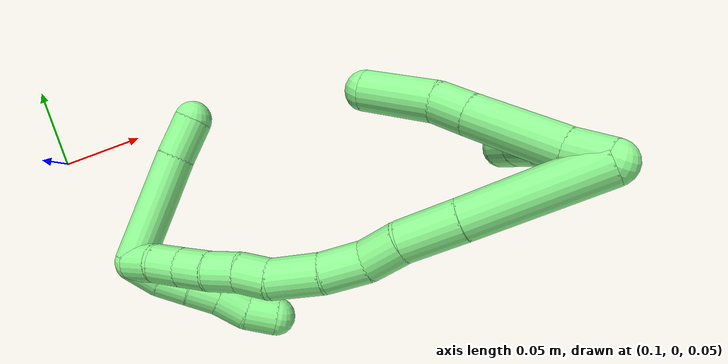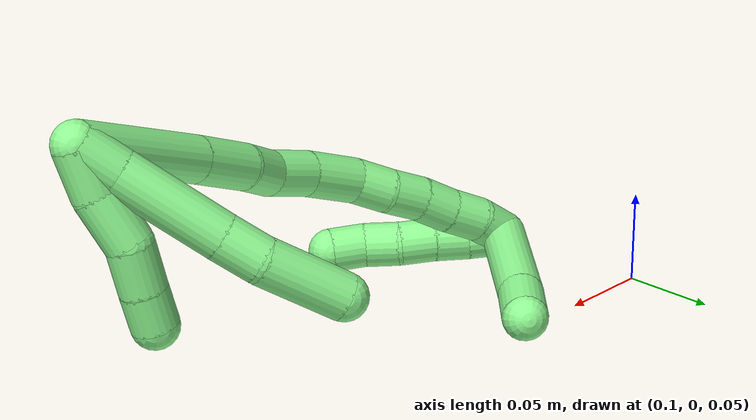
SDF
<sdf version="1.7">
 <world name="default">
  <model name="13">
   <static>0</static>
   <link name="13">
    <collision name="collision-cylinder-e_1_2_8">
     <pose>-0.003468 -0.011111 0.001676 1.42108 -0.299328 -0.25806</pose>
     <geometry><cylinder><radius>0.0125</radius><length>0.02352</length></cylinder></geometry>
     <surface>
      <friction><ode><mu>1.16</mu><mu2>1.16</mu2><slip1>0</slip1><slip2>0</slip2></ode></friction>
      <contact><ode><kp>1e+06</kp><kd>1</kd><max_vel>0</max_vel><min_depth>0.001</min_depth></ode></contact>
     </surface>
    </collision>
    <visual name="visual-cylinder-e_1_2_8">
     <pose>-0.003468 -0.011111 0.001676 1.42108 -0.299328 -0.25806</pose>
     <geometry><cylinder><radius>0.0125</radius><length>0.02352</length></cylinder></geometry>
     <material><ambient>0.564706 0.984314 0.572549 1</ambient></material>
    </visual>
    <collision name="collision-cylinder-e_2_8_9">
     <pose>-0.015941 -0.049653 0.00483 1.51697 -0.316787 -0.300435</pose>
     <geometry><cylinder><radius>0.0125</radius><length>0.057817</length></cylinder></geometry>
     <surface>
      <friction><ode><mu>1.16</mu><mu2>1.16</mu2><slip1>0</slip1><slip2>0</slip2></ode></friction>
      <contact><ode><kp>1e+06</kp><kd>1</kd><max_vel>0</max_vel><min_depth>0.001</min_depth></ode></contact>
     </surface>
    </collision>
    <visual name="visual-cylinder-e_2_8_9">
     <pose>-0.015941 -0.049653 0.00483 1.51697 -0.316787 -0.300435</pose>
     <geometry><cylinder><radius>0.0125</radius><length>0.057817</length></cylinder></geometry>
     <material><ambient>0.564706 0.984314 0.572549 1</ambient></material>
    </visual>
    <collision name="collision-cylinder-e_3_9_10">
     <pose>-0.028755 -0.087667 0.006671 1.53655 -0.345257 -0.333848</pose>
     <geometry><cylinder><radius>0.0125</radius><length>0.022508</length></cylinder></geometry>
     <surface>
      <friction><ode><mu>1.16</mu><mu2>1.16</mu2><slip1>0</slip1><slip2>0</slip2></ode></friction>
      <contact><ode><kp>1e+06</kp><kd>1</kd><max_vel>0</max_vel><min_depth>0.001</min_depth></ode></contact>
     </surface>
    </collision>
    <visual name="visual-cylinder-e_3_9_10">
     <pose>-0.028755 -0.087667 0.006671 1.53655 -0.345257 -0.333848</pose>
     <geometry><cylinder><radius>0.0125</radius><length>0.022508</length></cylinder></geometry>
     <material><ambient>0.564706 0.984314 0.572549 1</ambient></material>
    </visual>
    <collision name="collision-cylinder-e_4_10_6">
     <pose>-0.042316 -0.118591 0.011906 1.33565 -0.436301 -0.346185</pose>
     <geometry><cylinder><radius>0.0125</radius><length>0.046155</length></cylinder></geometry>
     <surface>
      <friction><ode><mu>1.16</mu><mu2>1.16</mu2><slip1>0</slip1><slip2>0</slip2></ode></friction>
      <contact><ode><kp>1e+06</kp><kd>1</kd><max_vel>0</max_vel><min_depth>0.001</min_depth></ode></contact>
     </surface>
    </collision>
    <visual name="visual-cylinder-e_4_10_6">
     <pose>-0.042316 -0.118591 0.011906 1.33565 -0.436301 -0.346185</pose>
     <geometry><cylinder><radius>0.0125</radius><length>0.046155</length></cylinder></geometry>
     <material><ambient>0.564706 0.984314 0.572549 1</ambient></material>
    </visual>
    <collision name="collision-cylinder-e_1_2_11">
     <pose>0.003973 -0.01203 0.002729 1.34771 0.311548 0.249515</pose>
     <geometry><cylinder><radius>0.0125</radius><length>0.025919</length></cylinder></geometry>
     <surface>
      <friction><ode><mu>1.16</mu><mu2>1.16</mu2><slip1>0</slip1><slip2>0</slip2></ode></friction>
      <contact><ode><kp>1e+06</kp><kd>1</kd><max_vel>0</max_vel><min_depth>0.001</min_depth></ode></contact>
     </surface>
    </collision>
    <visual name="visual-cylinder-e_1_2_11">
     <pose>0.003973 -0.01203 0.002729 1.34771 0.311548 0.249515</pose>
     <geometry><cylinder><radius>0.0125</radius><length>0.025919</length></cylinder></geometry>
     <material><ambient>0.564706 0.984314 0.572549 1</ambient></material>
    </visual>
    <collision name="collision-cylinder-e_2_11_12">
     <pose>0.009525 -0.038208 0.00743 1.43235 0.110142 0.095882</pose>
     <geometry><cylinder><radius>0.0125</radius><length>0.028744</length></cylinder></geometry>
     <surface>
      <friction><ode><mu>1.16</mu><mu2>1.16</mu2><slip1>0</slip1><slip2>0</slip2></ode></friction>
      <contact><ode><kp>1e+06</kp><kd>1</kd><max_vel>0</max_vel><min_depth>0.001</min_depth></ode></contact>
     </surface>
    </collision>
    <visual name="visual-cylinder-e_2_11_12">
     <pose>0.009525 -0.038208 0.00743 1.43235 0.110142 0.095882</pose>
     <geometry><cylinder><radius>0.0125</radius><length>0.028744</length></cylinder></geometry>
     <material><ambient>0.564706 0.984314 0.572549 1</ambient></material>
    </visual>
    <collision name="collision-cylinder-e_3_12_13">
     <pose>0.015823 -0.063163 0.013298 1.22468 0.389753 0.275529</pose>
     <geometry><cylinder><radius>0.0125</radius><length>0.024837</length></cylinder></geometry>
     <surface>
      <friction><ode><mu>1.16</mu><mu2>1.16</mu2><slip1>0</slip1><slip2>0</slip2></ode></friction>
      <contact><ode><kp>1e+06</kp><kd>1</kd><max_vel>0</max_vel><min_depth>0.001</min_depth></ode></contact>
     </surface>
    </collision>
    <visual name="visual-cylinder-e_3_12_13">
     <pose>0.015823 -0.063163 0.013298 1.22468 0.389753 0.275529</pose>
     <geometry><cylinder><radius>0.0125</radius><length>0.024837</length></cylinder></geometry>
     <material><ambient>0.564706 0.984314 0.572549 1</ambient></material>
    </visual>
    <collision name="collision-cylinder-e_4_13_5">
     <pose>0.024192 -0.082865 0.020744 1.19127 0.364074 0.248231</pose>
     <geometry><cylinder><radius>0.0125</radius><length>0.020499</length></cylinder></geometry>
     <surface>
      <friction><ode><mu>1.16</mu><mu2>1.16</mu2><slip1>0</slip1><slip2>0</slip2></ode></friction>
      <contact><ode><kp>1e+06</kp><kd>1</kd><max_vel>0</max_vel><min_depth>0.001</min_depth></ode></contact>
     </surface>
    </collision>
    <visual name="visual-cylinder-e_4_13_5">
     <pose>0.024192 -0.082865 0.020744 1.19127 0.364074 0.248231</pose>
     <geometry><cylinder><radius>0.0125</radius><length>0.020499</length></cylinder></geometry>
     <material><ambient>0.564706 0.984314 0.572549 1</ambient></material>
    </visual>
    <collision name="collision-cylinder-e_1_2_14">
     <pose>-0.018845 -0.021448 0.027803 0.657067 -0.492549 -0.170965</pose>
     <geometry><cylinder><radius>0.0125</radius><length>0.079703</length></cylinder></geometry>
     <surface>
      <friction><ode><mu>1.16</mu><mu2>1.16</mu2><slip1>0</slip1><slip2>0</slip2></ode></friction>
      <contact><ode><kp>1e+06</kp><kd>1</kd><max_vel>0</max_vel><min_depth>0.001</min_depth></ode></contact>
     </surface>
    </collision>
    <visual name="visual-cylinder-e_1_2_14">
     <pose>-0.018845 -0.021448 0.027803 0.657067 -0.492549 -0.170965</pose>
     <geometry><cylinder><radius>0.0125</radius><length>0.079703</length></cylinder></geometry>
     <material><ambient>0.564706 0.984314 0.572549 1</ambient></material>
    </visual>
    <collision name="collision-cylinder-e_2_14_15">
     <pose>-0.045867 -0.052886 0.067952 0.680363 -0.475477 -0.171116</pose>
     <geometry><cylinder><radius>0.0125</radius><length>0.035726</length></cylinder></geometry>
     <surface>
      <friction><ode><mu>1.16</mu><mu2>1.16</mu2><slip1>0</slip1><slip2>0</slip2></ode></friction>
      <contact><ode><kp>1e+06</kp><kd>1</kd><max_vel>0</max_vel><min_depth>0.001</min_depth></ode></contact>
     </surface>
    </collision>
    <visual name="visual-cylinder-e_2_14_15">
     <pose>-0.045867 -0.052886 0.067952 0.680363 -0.475477 -0.171116</pose>
     <geometry><cylinder><radius>0.0125</radius><length>0.035726</length></cylinder></geometry>
     <material><ambient>0.564706 0.984314 0.572549 1</ambient></material>
    </visual>
    <collision name="collision-cylinder-e_3_15_16">
     <pose>-0.057951 -0.068855 0.089663 0.568116 -0.338168 -0.099598</pose>
     <geometry><cylinder><radius>0.0125</radius><length>0.023556</length></cylinder></geometry>
     <surface>
      <friction><ode><mu>1.16</mu><mu2>1.16</mu2><slip1>0</slip1><slip2>0</slip2></ode></friction>
      <contact><ode><kp>1e+06</kp><kd>1</kd><max_vel>0</max_vel><min_depth>0.001</min_depth></ode></contact>
     </surface>
    </collision>
    <visual name="visual-cylinder-e_3_15_16">
     <pose>-0.057951 -0.068855 0.089663 0.568116 -0.338168 -0.099598</pose>
     <geometry><cylinder><radius>0.0125</radius><length>0.023556</length></cylinder></geometry>
     <material><ambient>0.564706 0.984314 0.572549 1</ambient></material>
    </visual>
    <collision name="collision-cylinder-e_4_16_17">
     <pose>-0.069667 -0.081949 0.107282 0.711486 -0.621741 -0.237625</pose>
     <geometry><cylinder><radius>0.0125</radius><length>0.026812</length></cylinder></geometry>
     <surface>
      <friction><ode><mu>1.16</mu><mu2>1.16</mu2><slip1>0</slip1><slip2>0</slip2></ode></friction>
      <contact><ode><kp>1e+06</kp><kd>1</kd><max_vel>0</max_vel><min_depth>0.001</min_depth></ode></contact>
     </surface>
    </collision>
    <visual name="visual-cylinder-e_4_16_17">
     <pose>-0.069667 -0.081949 0.107282 0.711486 -0.621741 -0.237625</pose>
     <geometry><cylinder><radius>0.0125</radius><length>0.026812</length></cylinder></geometry>
     <material><ambient>0.564706 0.984314 0.572549 1</ambient></material>
    </visual>
    <collision name="collision-cylinder-e_5_17_18">
     <pose>-0.086549 -0.099553 0.123763 0.905613 -0.597642 -0.297526</pose>
     <geometry><cylinder><radius>0.0125</radius><length>0.03225</length></cylinder></geometry>
     <surface>
      <friction><ode><mu>1.16</mu><mu2>1.16</mu2><slip1>0</slip1><slip2>0</slip2></ode></friction>
      <contact><ode><kp>1e+06</kp><kd>1</kd><max_vel>0</max_vel><min_depth>0.001</min_depth></ode></contact>
     </surface>
    </collision>
    <visual name="visual-cylinder-e_5_17_18">
     <pose>-0.086549 -0.099553 0.123763 0.905613 -0.597642 -0.297526</pose>
     <geometry><cylinder><radius>0.0125</radius><length>0.03225</length></cylinder></geometry>
     <material><ambient>0.564706 0.984314 0.572549 1</ambient></material>
    </visual>
    <collision name="collision-cylinder-e_6_18_19">
     <pose>-0.101158 -0.118494 0.134577 1.27382 -0.559485 -0.418794</pose>
     <geometry><cylinder><radius>0.0125</radius><length>0.020861</length></cylinder></geometry>
     <surface>
      <friction><ode><mu>1.16</mu><mu2>1.16</mu2><slip1>0</slip1><slip2>0</slip2></ode></friction>
      <contact><ode><kp>1e+06</kp><kd>1</kd><max_vel>0</max_vel><min_depth>0.001</min_depth></ode></contact>
     </surface>
    </collision>
    <visual name="visual-cylinder-e_6_18_19">
     <pose>-0.101158 -0.118494 0.134577 1.27382 -0.559485 -0.418794</pose>
     <geometry><cylinder><radius>0.0125</radius><length>0.020861</length></cylinder></geometry>
     <material><ambient>0.564706 0.984314 0.572549 1</ambient></material>
    </visual>
    <collision name="collision-cylinder-e_7_19_20">
     <pose>-0.112349 -0.134662 0.141264 1.08238 -0.574427 -0.351416</pose>
     <geometry><cylinder><radius>0.0125</radius><length>0.020814</length></cylinder></geometry>
     <surface>
      <friction><ode><mu>1.16</mu><mu2>1.16</mu2><slip1>0</slip1><slip2>0</slip2></ode></friction>
      <contact><ode><kp>1e+06</kp><kd>1</kd><max_vel>0</max_vel><min_depth>0.001</min_depth></ode></contact>
     </surface>
    </collision>
    <visual name="visual-cylinder-e_7_19_20">
     <pose>-0.112349 -0.134662 0.141264 1.08238 -0.574427 -0.351416</pose>
     <geometry><cylinder><radius>0.0125</radius><length>0.020814</length></cylinder></geometry>
     <material><ambient>0.564706 0.984314 0.572549 1</ambient></material>
    </visual>
    <collision name="collision-cylinder-e_8_20_21">
     <pose>-0.122528 -0.150675 0.148821 1.17596 -0.466273 -0.313983</pose>
     <geometry><cylinder><radius>0.0125</radius><length>0.020127</length></cylinder></geometry>
     <surface>
      <friction><ode><mu>1.16</mu><mu2>1.16</mu2><slip1>0</slip1><slip2>0</slip2></ode></friction>
      <contact><ode><kp>1e+06</kp><kd>1</kd><max_vel>0</max_vel><min_depth>0.001</min_depth></ode></contact>
     </surface>
    </collision>
    <visual name="visual-cylinder-e_8_20_21">
     <pose>-0.122528 -0.150675 0.148821 1.17596 -0.466273 -0.313983</pose>
     <geometry><cylinder><radius>0.0125</radius><length>0.020127</length></cylinder></geometry>
     <material><ambient>0.564706 0.984314 0.572549 1</ambient></material>
    </visual>
    <collision name="collision-cylinder-e_9_21_22">
     <pose>-0.132318 -0.166935 0.155405 1.19672 -0.551809 -0.381343</pose>
     <geometry><cylinder><radius>0.0125</radius><length>0.02009</length></cylinder></geometry>
     <surface>
      <friction><ode><mu>1.16</mu><mu2>1.16</mu2><slip1>0</slip1><slip2>0</slip2></ode></friction>
      <contact><ode><kp>1e+06</kp><kd>1</kd><max_vel>0</max_vel><min_depth>0.001</min_depth></ode></contact>
     </surface>
    </collision>
    <visual name="visual-cylinder-e_9_21_22">
     <pose>-0.132318 -0.166935 0.155405 1.19672 -0.551809 -0.381343</pose>
     <geometry><cylinder><radius>0.0125</radius><length>0.02009</length></cylinder></geometry>
     <material><ambient>0.564706 0.984314 0.572549 1</ambient></material>
    </visual>
    <collision name="collision-cylinder-e_10_22_1">
     <pose>-0.140935 -0.183309 0.162846 1.09677 -0.340638 -0.209358</pose>
     <geometry><cylinder><radius>0.0125</radius><length>0.02006</length></cylinder></geometry>
     <surface>
      <friction><ode><mu>1.16</mu><mu2>1.16</mu2><slip1>0</slip1><slip2>0</slip2></ode></friction>
      <contact><ode><kp>1e+06</kp><kd>1</kd><max_vel>0</max_vel><min_depth>0.001</min_depth></ode></contact>
     </surface>
    </collision>
    <visual name="visual-cylinder-e_10_22_1">
     <pose>-0.140935 -0.183309 0.162846 1.09677 -0.340638 -0.209358</pose>
     <geometry><cylinder><radius>0.0125</radius><length>0.02006</length></cylinder></geometry>
     <material><ambient>0.564706 0.984314 0.572549 1</ambient></material>
    </visual>
    <collision name="collision-cylinder-e_1_1_23">
     <pose>-0.135054 -0.201569 0.133359 2.85808 0.256425 1.46932</pose>
     <geometry><cylinder><radius>0.0125</radius><length>0.072796</length></cylinder></geometry>
     <surface>
      <friction><ode><mu>1.16</mu><mu2>1.16</mu2><slip1>0</slip1><slip2>0</slip2></ode></friction>
      <contact><ode><kp>1e+06</kp><kd>1</kd><max_vel>0</max_vel><min_depth>0.001</min_depth></ode></contact>
     </surface>
    </collision>
    <visual name="visual-cylinder-e_1_1_23">
     <pose>-0.135054 -0.201569 0.133359 2.85808 0.256425 1.46932</pose>
     <geometry><cylinder><radius>0.0125</radius><length>0.072796</length></cylinder></geometry>
     <material><ambient>0.564706 0.984314 0.572549 1</ambient></material>
    </visual>
    <collision name="collision-cylinder-e_2_23_4">
     <pose>-0.122004 -0.214177 0.086796 2.92863 0.284585 1.85961</pose>
     <geometry><cylinder><radius>0.0125</radius><length>0.027204</length></cylinder></geometry>
     <surface>
      <friction><ode><mu>1.16</mu><mu2>1.16</mu2><slip1>0</slip1><slip2>0</slip2></ode></friction>
      <contact><ode><kp>1e+06</kp><kd>1</kd><max_vel>0</max_vel><min_depth>0.001</min_depth></ode></contact>
     </surface>
    </collision>
    <visual name="visual-cylinder-e_2_23_4">
     <pose>-0.122004 -0.214177 0.086796 2.92863 0.284585 1.85961</pose>
     <geometry><cylinder><radius>0.0125</radius><length>0.027204</length></cylinder></geometry>
     <material><ambient>0.564706 0.984314 0.572549 1</ambient></material>
    </visual>
    <collision name="collision-cylinder-e_1_1_24">
     <pose>-0.136076 -0.186713 0.169904 -1.06971 0.9631 -0.600496</pose>
     <geometry><cylinder><radius>0.0125</radius><length>0.02</length></cylinder></geometry>
     <surface>
      <friction><ode><mu>1.16</mu><mu2>1.16</mu2><slip1>0</slip1><slip2>0</slip2></ode></friction>
      <contact><ode><kp>1e+06</kp><kd>1</kd><max_vel>0</max_vel><min_depth>0.001</min_depth></ode></contact>
     </surface>
    </collision>
    <visual name="visual-cylinder-e_1_1_24">
     <pose>-0.136076 -0.186713 0.169904 -1.06971 0.9631 -0.600496</pose>
     <geometry><cylinder><radius>0.0125</radius><length>0.02</length></cylinder></geometry>
     <material><ambient>0.564706 0.984314 0.572549 1</ambient></material>
    </visual>
    <collision name="collision-cylinder-e_2_24_25">
     <pose>-0.119786 -0.175815 0.172507 -1.59452 0.940745 -0.960046</pose>
     <geometry><cylinder><radius>0.0125</radius><length>0.02</length></cylinder></geometry>
     <surface>
      <friction><ode><mu>1.16</mu><mu2>1.16</mu2><slip1>0</slip1><slip2>0</slip2></ode></friction>
      <contact><ode><kp>1e+06</kp><kd>1</kd><max_vel>0</max_vel><min_depth>0.001</min_depth></ode></contact>
     </surface>
    </collision>
    <visual name="visual-cylinder-e_2_24_25">
     <pose>-0.119786 -0.175815 0.172507 -1.59452 0.940745 -0.960046</pose>
     <geometry><cylinder><radius>0.0125</radius><length>0.02</length></cylinder></geometry>
     <material><ambient>0.564706 0.984314 0.572549 1</ambient></material>
    </visual>
    <collision name="collision-cylinder-e_3_25_26">
     <pose>-0.103251 -0.164587 0.172482 -1.54935 1.00763 -0.989599</pose>
     <geometry><cylinder><radius>0.0125</radius><length>0.02</length></cylinder></geometry>
     <surface>
      <friction><ode><mu>1.16</mu><mu2>1.16</mu2><slip1>0</slip1><slip2>0</slip2></ode></friction>
      <contact><ode><kp>1e+06</kp><kd>1</kd><max_vel>0</max_vel><min_depth>0.001</min_depth></ode></contact>
     </surface>
    </collision>
    <visual name="visual-cylinder-e_3_25_26">
     <pose>-0.103251 -0.164587 0.172482 -1.54935 1.00763 -0.989599</pose>
     <geometry><cylinder><radius>0.0125</radius><length>0.02</length></cylinder></geometry>
     <material><ambient>0.564706 0.984314 0.572549 1</ambient></material>
    </visual>
    <collision name="collision-cylinder-e_4_26_27">
     <pose>-0.086877 -0.153427 0.174442 -1.26383 0.913663 -0.690777</pose>
     <geometry><cylinder><radius>0.0125</radius><length>0.02</length></cylinder></geometry>
     <surface>
      <friction><ode><mu>1.16</mu><mu2>1.16</mu2><slip1>0</slip1><slip2>0</slip2></ode></friction>
      <contact><ode><kp>1e+06</kp><kd>1</kd><max_vel>0</max_vel><min_depth>0.001</min_depth></ode></contact>
     </surface>
    </collision>
    <visual name="visual-cylinder-e_4_26_27">
     <pose>-0.086877 -0.153427 0.174442 -1.26383 0.913663 -0.690777</pose>
     <geometry><cylinder><radius>0.0125</radius><length>0.02</length></cylinder></geometry>
     <material><ambient>0.564706 0.984314 0.572549 1</ambient></material>
    </visual>
    <collision name="collision-cylinder-e_5_27_3">
     <pose>-0.070441 -0.14246 0.175301 -1.76037 1.01953 -1.18958</pose>
     <geometry><cylinder><radius>0.0125</radius><length>0.02</length></cylinder></geometry>
     <surface>
      <friction><ode><mu>1.16</mu><mu2>1.16</mu2><slip1>0</slip1><slip2>0</slip2></ode></friction>
      <contact><ode><kp>1e+06</kp><kd>1</kd><max_vel>0</max_vel><min_depth>0.001</min_depth></ode></contact>
     </surface>
    </collision>
    <visual name="visual-cylinder-e_5_27_3">
     <pose>-0.070441 -0.14246 0.175301 -1.76037 1.01953 -1.18958</pose>
     <geometry><cylinder><radius>0.0125</radius><length>0.02</length></cylinder></geometry>
     <material><ambient>0.564706 0.984314 0.572549 1</ambient></material>
    </visual>
    <collision name="collision-sphere-3">
     <pose>-0.061923 -0.137316 0.174314 0 -0 0</pose>
     <geometry><sphere><radius>0.0125</radius></sphere></geometry>
     <surface>
      <friction><ode><mu>1.16</mu><mu2>1.16</mu2><slip1>0</slip1><slip2>0</slip2></ode></friction>
      <contact><ode><kp>1e+06</kp><kd>1</kd><max_vel>0</max_vel><min_depth>0.001</min_depth></ode></contact>
     </surface>
    </collision>
    <visual name="visual-sphere-3">
     <pose>-0.061923 -0.137316 0.174314 0 -0 0</pose>
     <geometry><sphere><radius>0.0125</radius></sphere></geometry>
     <material><ambient>0.564706 0.984314 0.572549 1</ambient></material>
    </visual>
    <collision name="collision-sphere-27">
     <pose>-0.07896 -0.147604 0.176288 0 -0 0</pose>
     <geometry><sphere><radius>0.0125</radius></sphere></geometry>
     <surface>
      <friction><ode><mu>1.16</mu><mu2>1.16</mu2><slip1>0</slip1><slip2>0</slip2></ode></friction>
      <contact><ode><kp>1e+06</kp><kd>1</kd><max_vel>0</max_vel><min_depth>0.001</min_depth></ode></contact>
     </surface>
    </collision>
    <visual name="visual-sphere-27">
     <pose>-0.07896 -0.147604 0.176288 0 -0 0</pose>
     <geometry><sphere><radius>0.0125</radius></sphere></geometry>
     <material><ambient>0.564706 0.984314 0.572549 1</ambient></material>
    </visual>
    <collision name="collision-sphere-26">
     <pose>-0.094795 -0.15925 0.172596 0 -0 0</pose>
     <geometry><sphere><radius>0.0125</radius></sphere></geometry>
     <surface>
      <friction><ode><mu>1.16</mu><mu2>1.16</mu2><slip1>0</slip1><slip2>0</slip2></ode></friction>
      <contact><ode><kp>1e+06</kp><kd>1</kd><max_vel>0</max_vel><min_depth>0.001</min_depth></ode></contact>
     </surface>
    </collision>
    <visual name="visual-sphere-26">
     <pose>-0.094795 -0.15925 0.172596 0 -0 0</pose>
     <geometry><sphere><radius>0.0125</radius></sphere></geometry>
     <material><ambient>0.564706 0.984314 0.572549 1</ambient></material>
    </visual>
    <collision name="collision-sphere-25">
     <pose>-0.111706 -0.169925 0.172367 0 -0 0</pose>
     <geometry><sphere><radius>0.0125</radius></sphere></geometry>
     <surface>
      <friction><ode><mu>1.16</mu><mu2>1.16</mu2><slip1>0</slip1><slip2>0</slip2></ode></friction>
      <contact><ode><kp>1e+06</kp><kd>1</kd><max_vel>0</max_vel><min_depth>0.001</min_depth></ode></contact>
     </surface>
    </collision>
    <visual name="visual-sphere-25">
     <pose>-0.111706 -0.169925 0.172367 0 -0 0</pose>
     <geometry><sphere><radius>0.0125</radius></sphere></geometry>
     <material><ambient>0.564706 0.984314 0.572549 1</ambient></material>
    </visual>
    <collision name="collision-sphere-24">
     <pose>-0.127866 -0.181705 0.172647 0 -0 0</pose>
     <geometry><sphere><radius>0.0125</radius></sphere></geometry>
     <surface>
      <friction><ode><mu>1.16</mu><mu2>1.16</mu2><slip1>0</slip1><slip2>0</slip2></ode></friction>
      <contact><ode><kp>1e+06</kp><kd>1</kd><max_vel>0</max_vel><min_depth>0.001</min_depth></ode></contact>
     </surface>
    </collision>
    <visual name="visual-sphere-24">
     <pose>-0.127866 -0.181705 0.172647 0 -0 0</pose>
     <geometry><sphere><radius>0.0125</radius></sphere></geometry>
     <material><ambient>0.564706 0.984314 0.572549 1</ambient></material>
    </visual>
    <collision name="collision-sphere-4">
     <pose>-0.118185 -0.216936 0.074036 0 -0 0</pose>
     <geometry><sphere><radius>0.0125</radius></sphere></geometry>
     <surface>
      <friction><ode><mu>1.16</mu><mu2>1.16</mu2><slip1>0</slip1><slip2>0</slip2></ode></friction>
      <contact><ode><kp>1e+06</kp><kd>1</kd><max_vel>0</max_vel><min_depth>0.001</min_depth></ode></contact>
     </surface>
    </collision>
    <visual name="visual-sphere-4">
     <pose>-0.118185 -0.216936 0.074036 0 -0 0</pose>
     <geometry><sphere><radius>0.0125</radius></sphere></geometry>
     <material><ambient>0.564706 0.984314 0.572549 1</ambient></material>
    </visual>
    <collision name="collision-sphere-23">
     <pose>-0.125823 -0.211418 0.099556 0 -0 0</pose>
     <geometry><sphere><radius>0.0125</radius></sphere></geometry>
     <surface>
      <friction><ode><mu>1.16</mu><mu2>1.16</mu2><slip1>0</slip1><slip2>0</slip2></ode></friction>
      <contact><ode><kp>1e+06</kp><kd>1</kd><max_vel>0</max_vel><min_depth>0.001</min_depth></ode></contact>
     </surface>
    </collision>
    <visual name="visual-sphere-23">
     <pose>-0.125823 -0.211418 0.099556 0 -0 0</pose>
     <geometry><sphere><radius>0.0125</radius></sphere></geometry>
     <material><ambient>0.564706 0.984314 0.572549 1</ambient></material>
    </visual>
    <collision name="collision-sphere-1">
     <pose>-0.144286 -0.191721 0.167161 0 -0 0</pose>
     <geometry><sphere><radius>0.0125</radius></sphere></geometry>
     <surface>
      <friction><ode><mu>1.16</mu><mu2>1.16</mu2><slip1>0</slip1><slip2>0</slip2></ode></friction>
      <contact><ode><kp>1e+06</kp><kd>1</kd><max_vel>0</max_vel><min_depth>0.001</min_depth></ode></contact>
     </surface>
    </collision>
    <visual name="visual-sphere-1">
     <pose>-0.144286 -0.191721 0.167161 0 -0 0</pose>
     <geometry><sphere><radius>0.0125</radius></sphere></geometry>
     <material><ambient>0.564706 0.984314 0.572549 1</ambient></material>
    </visual>
    <collision name="collision-sphere-22">
     <pose>-0.137584 -0.174898 0.15853 0 -0 0</pose>
     <geometry><sphere><radius>0.0125</radius></sphere></geometry>
     <surface>
      <friction><ode><mu>1.16</mu><mu2>1.16</mu2><slip1>0</slip1><slip2>0</slip2></ode></friction>
      <contact><ode><kp>1e+06</kp><kd>1</kd><max_vel>0</max_vel><min_depth>0.001</min_depth></ode></contact>
     </surface>
    </collision>
    <visual name="visual-sphere-22">
     <pose>-0.137584 -0.174898 0.15853 0 -0 0</pose>
     <geometry><sphere><radius>0.0125</radius></sphere></geometry>
     <material><ambient>0.564706 0.984314 0.572549 1</ambient></material>
    </visual>
    <collision name="collision-sphere-21">
     <pose>-0.127052 -0.158973 0.152279 0 -0 0</pose>
     <geometry><sphere><radius>0.0125</radius></sphere></geometry>
     <surface>
      <friction><ode><mu>1.16</mu><mu2>1.16</mu2><slip1>0</slip1><slip2>0</slip2></ode></friction>
      <contact><ode><kp>1e+06</kp><kd>1</kd><max_vel>0</max_vel><min_depth>0.001</min_depth></ode></contact>
     </surface>
    </collision>
    <visual name="visual-sphere-21">
     <pose>-0.127052 -0.158973 0.152279 0 -0 0</pose>
     <geometry><sphere><radius>0.0125</radius></sphere></geometry>
     <material><ambient>0.564706 0.984314 0.572549 1</ambient></material>
    </visual>
    <collision name="collision-sphere-11">
     <pose>0.007945 -0.02406 0.005458 0 -0 0</pose>
     <geometry><sphere><radius>0.0125</radius></sphere></geometry>
     <surface>
      <friction><ode><mu>1.16</mu><mu2>1.16</mu2><slip1>0</slip1><slip2>0</slip2></ode></friction>
      <contact><ode><kp>1e+06</kp><kd>1</kd><max_vel>0</max_vel><min_depth>0.001</min_depth></ode></contact>
     </surface>
    </collision>
    <visual name="visual-sphere-11">
     <pose>0.007945 -0.02406 0.005458 0 -0 0</pose>
     <geometry><sphere><radius>0.0125</radius></sphere></geometry>
     <material><ambient>0.564706 0.984314 0.572549 1</ambient></material>
    </visual>
    <collision name="collision-sphere-6">
     <pose>-0.052069 -0.138931 0.016779 0 -0 0</pose>
     <geometry><sphere><radius>0.0125</radius></sphere></geometry>
     <surface>
      <friction><ode><mu>1.16</mu><mu2>1.16</mu2><slip1>0</slip1><slip2>0</slip2></ode></friction>
      <contact><ode><kp>1e+06</kp><kd>1</kd><max_vel>0</max_vel><min_depth>0.001</min_depth></ode></contact>
     </surface>
    </collision>
    <visual name="visual-sphere-6">
     <pose>-0.052069 -0.138931 0.016779 0 -0 0</pose>
     <geometry><sphere><radius>0.0125</radius></sphere></geometry>
     <material><ambient>0.564706 0.984314 0.572549 1</ambient></material>
    </visual>
    <collision name="collision-sphere-10">
     <pose>-0.032564 -0.098251 0.007033 0 -0 0</pose>
     <geometry><sphere><radius>0.0125</radius></sphere></geometry>
     <surface>
      <friction><ode><mu>1.16</mu><mu2>1.16</mu2><slip1>0</slip1><slip2>0</slip2></ode></friction>
      <contact><ode><kp>1e+06</kp><kd>1</kd><max_vel>0</max_vel><min_depth>0.001</min_depth></ode></contact>
     </surface>
    </collision>
    <visual name="visual-sphere-10">
     <pose>-0.032564 -0.098251 0.007033 0 -0 0</pose>
     <geometry><sphere><radius>0.0125</radius></sphere></geometry>
     <material><ambient>0.564706 0.984314 0.572549 1</ambient></material>
    </visual>
    <collision name="collision-sphere-9">
     <pose>-0.024946 -0.077083 0.006308 0 -0 0</pose>
     <geometry><sphere><radius>0.0125</radius></sphere></geometry>
     <surface>
      <friction><ode><mu>1.16</mu><mu2>1.16</mu2><slip1>0</slip1><slip2>0</slip2></ode></friction>
      <contact><ode><kp>1e+06</kp><kd>1</kd><max_vel>0</max_vel><min_depth>0.001</min_depth></ode></contact>
     </surface>
    </collision>
    <visual name="visual-sphere-9">
     <pose>-0.024946 -0.077083 0.006308 0 -0 0</pose>
     <geometry><sphere><radius>0.0125</radius></sphere></geometry>
     <material><ambient>0.564706 0.984314 0.572549 1</ambient></material>
    </visual>
    <collision name="collision-sphere-2">
     <geometry><sphere><radius>0.0125</radius></sphere></geometry>
     <surface>
      <friction><ode><mu>1.16</mu><mu2>1.16</mu2><slip1>0</slip1><slip2>0</slip2></ode></friction>
      <contact><ode><kp>1e+06</kp><kd>1</kd><max_vel>0</max_vel><min_depth>0.001</min_depth></ode></contact>
     </surface>
    </collision>
    <visual name="visual-sphere-2">
     <geometry><sphere><radius>0.0125</radius></sphere></geometry>
     <material><ambient>0.564706 0.984314 0.572549 1</ambient></material>
    </visual>
    <collision name="collision-sphere-19">
     <pose>-0.106694 -0.126947 0.137164 0 -0 0</pose>
     <geometry><sphere><radius>0.0125</radius></sphere></geometry>
     <surface>
      <friction><ode><mu>1.16</mu><mu2>1.16</mu2><slip1>0</slip1><slip2>0</slip2></ode></friction>
      <contact><ode><kp>1e+06</kp><kd>1</kd><max_vel>0</max_vel><min_depth>0.001</min_depth></ode></contact>
     </surface>
    </collision>
    <visual name="visual-sphere-19">
     <pose>-0.106694 -0.126947 0.137164 0 -0 0</pose>
     <geometry><sphere><radius>0.0125</radius></sphere></geometry>
     <material><ambient>0.564706 0.984314 0.572549 1</ambient></material>
    </visual>
    <collision name="collision-sphere-8">
     <pose>-0.006936 -0.022223 0.003352 0 -0 0</pose>
     <geometry><sphere><radius>0.0125</radius></sphere></geometry>
     <surface>
      <friction><ode><mu>1.16</mu><mu2>1.16</mu2><slip1>0</slip1><slip2>0</slip2></ode></friction>
      <contact><ode><kp>1e+06</kp><kd>1</kd><max_vel>0</max_vel><min_depth>0.001</min_depth></ode></contact>
     </surface>
    </collision>
    <visual name="visual-sphere-8">
     <pose>-0.006936 -0.022223 0.003352 0 -0 0</pose>
     <geometry><sphere><radius>0.0125</radius></sphere></geometry>
     <material><ambient>0.564706 0.984314 0.572549 1</ambient></material>
    </visual>
    <collision name="collision-sphere-12">
     <pose>0.011105 -0.052357 0.009401 0 -0 0</pose>
     <geometry><sphere><radius>0.0125</radius></sphere></geometry>
     <surface>
      <friction><ode><mu>1.16</mu><mu2>1.16</mu2><slip1>0</slip1><slip2>0</slip2></ode></friction>
      <contact><ode><kp>1e+06</kp><kd>1</kd><max_vel>0</max_vel><min_depth>0.001</min_depth></ode></contact>
     </surface>
    </collision>
    <visual name="visual-sphere-12">
     <pose>0.011105 -0.052357 0.009401 0 -0 0</pose>
     <geometry><sphere><radius>0.0125</radius></sphere></geometry>
     <material><ambient>0.564706 0.984314 0.572549 1</ambient></material>
    </visual>
    <collision name="collision-sphere-13">
     <pose>0.020542 -0.073969 0.017195 0 -0 0</pose>
     <geometry><sphere><radius>0.0125</radius></sphere></geometry>
     <surface>
      <friction><ode><mu>1.16</mu><mu2>1.16</mu2><slip1>0</slip1><slip2>0</slip2></ode></friction>
      <contact><ode><kp>1e+06</kp><kd>1</kd><max_vel>0</max_vel><min_depth>0.001</min_depth></ode></contact>
     </surface>
    </collision>
    <visual name="visual-sphere-13">
     <pose>0.020542 -0.073969 0.017195 0 -0 0</pose>
     <geometry><sphere><radius>0.0125</radius></sphere></geometry>
     <material><ambient>0.564706 0.984314 0.572549 1</ambient></material>
    </visual>
    <collision name="collision-sphere-5">
     <pose>0.027841 -0.091761 0.024292 0 -0 0</pose>
     <geometry><sphere><radius>0.0125</radius></sphere></geometry>
     <surface>
      <friction><ode><mu>1.16</mu><mu2>1.16</mu2><slip1>0</slip1><slip2>0</slip2></ode></friction>
      <contact><ode><kp>1e+06</kp><kd>1</kd><max_vel>0</max_vel><min_depth>0.001</min_depth></ode></contact>
     </surface>
    </collision>
    <visual name="visual-sphere-5">
     <pose>0.027841 -0.091761 0.024292 0 -0 0</pose>
     <geometry><sphere><radius>0.0125</radius></sphere></geometry>
     <material><ambient>0.564706 0.984314 0.572549 1</ambient></material>
    </visual>
    <collision name="collision-sphere-14">
     <pose>-0.03769 -0.042896 0.055606 0 -0 0</pose>
     <geometry><sphere><radius>0.0125</radius></sphere></geometry>
     <surface>
      <friction><ode><mu>1.16</mu><mu2>1.16</mu2><slip1>0</slip1><slip2>0</slip2></ode></friction>
      <contact><ode><kp>1e+06</kp><kd>1</kd><max_vel>0</max_vel><min_depth>0.001</min_depth></ode></contact>
     </surface>
    </collision>
    <visual name="visual-sphere-14">
     <pose>-0.03769 -0.042896 0.055606 0 -0 0</pose>
     <geometry><sphere><radius>0.0125</radius></sphere></geometry>
     <material><ambient>0.564706 0.984314 0.572549 1</ambient></material>
    </visual>
    <collision name="collision-sphere-15">
     <pose>-0.054044 -0.062877 0.080297 0 -0 0</pose>
     <geometry><sphere><radius>0.0125</radius></sphere></geometry>
     <surface>
      <friction><ode><mu>1.16</mu><mu2>1.16</mu2><slip1>0</slip1><slip2>0</slip2></ode></friction>
      <contact><ode><kp>1e+06</kp><kd>1</kd><max_vel>0</max_vel><min_depth>0.001</min_depth></ode></contact>
     </surface>
    </collision>
    <visual name="visual-sphere-15">
     <pose>-0.054044 -0.062877 0.080297 0 -0 0</pose>
     <geometry><sphere><radius>0.0125</radius></sphere></geometry>
     <material><ambient>0.564706 0.984314 0.572549 1</ambient></material>
    </visual>
    <collision name="collision-sphere-16">
     <pose>-0.061859 -0.074834 0.099029 0 -0 0</pose>
     <geometry><sphere><radius>0.0125</radius></sphere></geometry>
     <surface>
      <friction><ode><mu>1.16</mu><mu2>1.16</mu2><slip1>0</slip1><slip2>0</slip2></ode></friction>
      <contact><ode><kp>1e+06</kp><kd>1</kd><max_vel>0</max_vel><min_depth>0.001</min_depth></ode></contact>
     </surface>
    </collision>
    <visual name="visual-sphere-16">
     <pose>-0.061859 -0.074834 0.099029 0 -0 0</pose>
     <geometry><sphere><radius>0.0125</radius></sphere></geometry>
     <material><ambient>0.564706 0.984314 0.572549 1</ambient></material>
    </visual>
    <collision name="collision-sphere-17">
     <pose>-0.077475 -0.089064 0.115536 0 -0 0</pose>
     <geometry><sphere><radius>0.0125</radius></sphere></geometry>
     <surface>
      <friction><ode><mu>1.16</mu><mu2>1.16</mu2><slip1>0</slip1><slip2>0</slip2></ode></friction>
      <contact><ode><kp>1e+06</kp><kd>1</kd><max_vel>0</max_vel><min_depth>0.001</min_depth></ode></contact>
     </surface>
    </collision>
    <visual name="visual-sphere-17">
     <pose>-0.077475 -0.089064 0.115536 0 -0 0</pose>
     <geometry><sphere><radius>0.0125</radius></sphere></geometry>
     <material><ambient>0.564706 0.984314 0.572549 1</ambient></material>
    </visual>
    <collision name="collision-sphere-18">
     <pose>-0.095622 -0.110041 0.13199 0 -0 0</pose>
     <geometry><sphere><radius>0.0125</radius></sphere></geometry>
     <surface>
      <friction><ode><mu>1.16</mu><mu2>1.16</mu2><slip1>0</slip1><slip2>0</slip2></ode></friction>
      <contact><ode><kp>1e+06</kp><kd>1</kd><max_vel>0</max_vel><min_depth>0.001</min_depth></ode></contact>
     </surface>
    </collision>
    <visual name="visual-sphere-18">
     <pose>-0.095622 -0.110041 0.13199 0 -0 0</pose>
     <geometry><sphere><radius>0.0125</radius></sphere></geometry>
     <material><ambient>0.564706 0.984314 0.572549 1</ambient></material>
    </visual>
    <collision name="collision-sphere-20">
     <pose>-0.118004 -0.142377 0.145363 0 -0 0</pose>
     <geometry><sphere><radius>0.0125</radius></sphere></geometry>
     <surface>
      <friction><ode><mu>1.16</mu><mu2>1.16</mu2><slip1>0</slip1><slip2>0</slip2></ode></friction>
      <contact><ode><kp>1e+06</kp><kd>1</kd><max_vel>0</max_vel><min_depth>0.001</min_depth></ode></contact>
     </surface>
    </collision>
    <visual name="visual-sphere-20">
     <pose>-0.118004 -0.142377 0.145363 0 -0 0</pose>
     <geometry><sphere><radius>0.0125</radius></sphere></geometry>
     <material><ambient>0.564706 0.984314 0.572549 1</ambient></material>
    </visual>
    <inertial>
     <pose>-0.063176 -0.104245 0.080234 0 -0 0</pose>
     <mass>0.75</mass>
     <inertia>
      <ixx>0.000109</ixx>
      <ixy>0</ixy>
      <ixz>0</ixz>
      <iyy>5.1e-05</iyy>
      <iyz>0</iyz>
      <izz>0.000117</izz>
     </inertia>
    </inertial>
   </link>
   <pose>0.387787 -0.11204 0.177378 1.95188 0.60336 -0.452201</pose>
  </model>
 </world>
</sdf>
